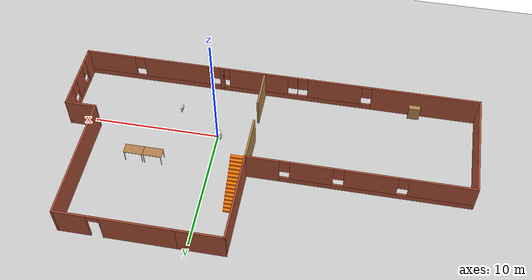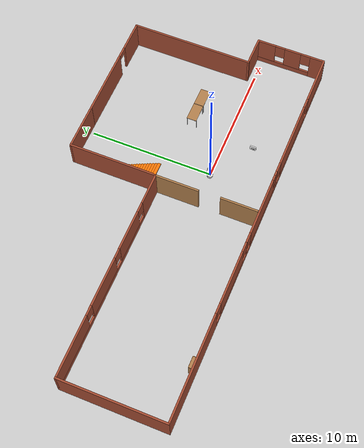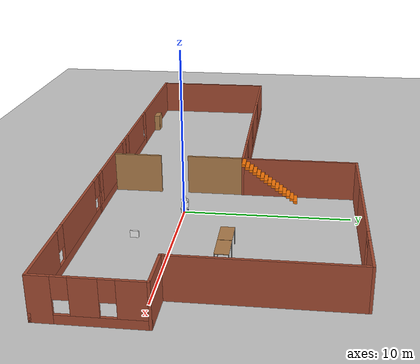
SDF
<sdf version="1.7">
 <world name="default">
  <light name="sun" type="directional">
   <pose>0 0 10 0 -0 0</pose>
   <diffuse>0.8 0.8 0.8 1</diffuse>
   <specular>0.2 0.2 0.2 1</specular>
   <attenuation>
    <range>1000</range>
    <constant>0.9</constant>
    <linear>0.01</linear>
    <quadratic>0.001</quadratic>
   </attenuation>
   <direction>-0.5 0.1 -0.9</direction>
   <spot><inner_angle>0</inner_angle><outer_angle>0</outer_angle><falloff>0</falloff></spot>
  </light>
  <model name="ground_plane">
   <static>1</static>
   <link name="link">
    <collision name="collision">
     <geometry><plane><normal>0 0 1</normal><size>100 100</size></plane></geometry>
     <surface>
      <contact><collide_bitmask>65535</collide_bitmask></contact>
      <friction><ode><mu>100</mu><mu2>50</mu2></ode></friction>
     </surface>
    </collision>
    <visual name="visual">
     <cast_shadows>0</cast_shadows>
     <geometry><plane><normal>0 0 1</normal><size>100 100</size></plane></geometry>
     <material>
      <script><uri>file://media/materials/scripts/gazebo.material</uri><name>Gazebo/Grey</name></script>
     </material>
    </visual>
   </link>
  </model>
  <gravity>0 0 -9.8</gravity>
  <magnetic_field>6e-06 2.3e-05 -4.2e-05</magnetic_field>
  <atmosphere type="adiabatic"/>
  <physics type="ode">
   <max_step_size>0.001</max_step_size>
   <real_time_factor>1</real_time_factor>
   <real_time_update_rate>1000</real_time_update_rate>
  </physics>
  <scene><ambient>0.4 0.4 0.4 1</ambient><background>0.7 0.7 0.7 1</background><shadows>1</shadows></scene>
  <audio><device>default</device></audio>
  <spherical_coordinates>
   <surface_model>EARTH_WGS84</surface_model>
   <latitude_deg>0</latitude_deg>
   <longitude_deg>0</longitude_deg>
   <elevation>0</elevation>
   <heading_deg>0</heading_deg>
  </spherical_coordinates>
  <model name="my_bot">
   <link name="base_link">
    <inertial>
     <pose>-0.066425 -0.011877 0.01512 0 -0 0</pose>
     <mass>2.53078</mass>
     <inertia>
      <ixx>3.92617</ixx>
      <ixy>-0.00703075</ixy>
      <ixz>-0.0105928</ixz>
      <iyy>3.13259</iyy>
      <iyz>-0.0048137</iyz>
      <izz>3.97093</izz>
     </inertia>
    </inertial>
    <collision name="base_link_fixed_joint_lump__charging_dock_collision">
     <pose>0.15 0 -0.03 0 -0 0</pose>
     <geometry>
      <mesh>
       <scale>0.001 0.001 0.001</scale>
       <uri>file:///home/morolinux/Documents/sbem_project_ws/install/robot_sbem/share/robot_sbem/description/meshes/charging_dock.stl</uri>
      </mesh>
     </geometry>
     <surface><friction><ode><mu>0.001</mu><mu2>0.001</mu2></ode></friction></surface>
    </collision>
    <collision name="base_link_fixed_joint_lump__chassis_collision_1">
     <pose>0 -0.04 -0.075 0 -0 0</pose>
     <geometry>
      <mesh>
       <scale>0.001 0.001 0.001</scale>
       <uri>file:///home/morolinux/Documents/sbem_project_ws/install/robot_sbem/share/robot_sbem/description/meshes/cover_frame_1.stl</uri>
      </mesh>
     </geometry>
    </collision>
    <collision name="base_link_fixed_joint_lump__caster_wheel_1_collision_2">
     <pose>0.04 0 -0.03 0 -0 0</pose>
     <geometry><sphere><radius>0.05</radius></sphere></geometry>
     <surface><friction><ode><mu>0.001</mu><mu2>0.001</mu2></ode></friction></surface>
    </collision>
    <collision name="base_link_fixed_joint_lump__caster_wheel_2_collision_3">
     <pose>-0.2 0 -0.03 0 -0 0</pose>
     <geometry><sphere><radius>0.05</radius></sphere></geometry>
     <surface><friction><ode><mu>0.001</mu><mu2>0.001</mu2></ode></friction></surface>
    </collision>
    <collision name="base_link_fixed_joint_lump__central_body_collision_4">
     <pose>-0.08 0 0.405 0 -0 0</pose>
     <geometry><cylinder><length>0.342</length><radius>0.216</radius></cylinder></geometry>
     <surface><friction><ode><mu>0.2</mu><mu2>0.2</mu2></ode></friction></surface>
    </collision>
    <collision name="base_link_fixed_joint_lump__upper_body_collision_5">
     <pose>-0.092447 -0.042954 -0.082 0 -0 0</pose>
     <geometry>
      <mesh>
       <scale>0.001 0.001 0.001</scale>
       <uri>file:///home/morolinux/Documents/sbem_project_ws/install/robot_sbem/share/robot_sbem/description/meshes/upper_body_1.stl</uri>
      </mesh>
     </geometry>
     <surface><friction><ode><mu>0.2</mu><mu2>0.2</mu2></ode></friction></surface>
    </collision>
    <collision name="base_link_fixed_joint_lump__dept_camera_collision_6">
     <pose>0.074599 0.183493 -0.225683 0 -0 0</pose>
     <geometry>
      <mesh>
       <scale>0.001 0.001 0.001</scale>
       <uri>file:///home/morolinux/Documents/sbem_project_ws/install/robot_sbem/share/robot_sbem/description/meshes/dept_camera_1.stl</uri>
      </mesh>
     </geometry>
     <surface><friction><ode><mu>0.2</mu><mu2>0.2</mu2></ode></friction></surface>
    </collision>
    <collision name="base_link_fixed_joint_lump__laser_frame_collision_7">
     <pose>0.07 0 0.2 0 0 -3.14159</pose>
     <geometry><cylinder><length>0.07</length><radius>0.035</radius></cylinder></geometry>
    </collision>
    <collision name="base_link_fixed_joint_lump__internal_body_collision_8">
     <pose>-0.1 -0.04 -0.078 0 -0 0</pose>
     <geometry>
      <mesh>
       <scale>0.001 0.001 0.001</scale>
       <uri>file:///home/morolinux/Documents/sbem_project_ws/install/robot_sbem/share/robot_sbem/description/meshes/base_link.stl</uri>
      </mesh>
     </geometry>
    </collision>
    <visual name="base_link_fixed_joint_lump__charging_dock_visual">
     <pose>0.15 0 -0.03 0 -0 0</pose>
     <geometry>
      <mesh>
       <scale>0.001 0.001 0.001</scale>
       <uri>file:///home/morolinux/Documents/sbem_project_ws/install/robot_sbem/share/robot_sbem/description/meshes/charging_dock.stl</uri>
      </mesh>
     </geometry>
     <material>
      <script><name>Gazebo/White</name><uri>file://media/materials/scripts/gazebo.material</uri></script>
     </material>
    </visual>
    <visual name="base_link_fixed_joint_lump__chassis_visual_1">
     <pose>-0.09 -0.04 -0.075 0 -0 0</pose>
     <geometry>
      <mesh>
       <scale>0.001 0.001 0.001</scale>
       <uri>file:///home/morolinux/Documents/sbem_project_ws/install/robot_sbem/share/robot_sbem/description/meshes/cover_frame_1.stl</uri>
      </mesh>
     </geometry>
     <material>
      <script><name>Gazebo/White</name><uri>file://media/materials/scripts/gazebo.material</uri></script>
     </material>
    </visual>
    <visual name="base_link_fixed_joint_lump__camera_link_visual_2">
     <pose>0.13 0 0.065 0 -0 0</pose>
     <geometry><box><size>0.01 0.03 0.03</size></box></geometry>
     <material>
      <script><name>Gazebo/Red</name><uri>file://media/materials/scripts/gazebo.material</uri></script>
     </material>
    </visual>
    <visual name="base_link_fixed_joint_lump__caster_wheel_1_visual_3">
     <pose>0.04 0 -0.03 0 -0 0</pose>
     <geometry><sphere><radius>0.05</radius></sphere></geometry>
     <material>
      <script><name>Gazebo/White</name><uri>file://media/materials/scripts/gazebo.material</uri></script>
     </material>
    </visual>
    <visual name="base_link_fixed_joint_lump__caster_wheel_2_visual_4">
     <pose>-0.2 0 -0.03 0 -0 0</pose>
     <geometry><sphere><radius>0.05</radius></sphere></geometry>
     <material>
      <script><name>Gazebo/White</name><uri>file://media/materials/scripts/gazebo.material</uri></script>
     </material>
    </visual>
    <visual name="base_link_fixed_joint_lump__central_body_visual_5">
     <pose>-0.08 0 0.405 0 -0 0</pose>
     <geometry><cylinder><length>0.342</length><radius>0.216</radius></cylinder></geometry>
     <material>
      <script><name>Gazebo/White</name><uri>file://media/materials/scripts/gazebo.material</uri></script>
     </material>
    </visual>
    <visual name="base_link_fixed_joint_lump__upper_body_visual_6">
     <pose>-0.092447 -0.042954 -0.082 0 -0 0</pose>
     <geometry>
      <mesh>
       <scale>0.001 0.001 0.001</scale>
       <uri>file:///home/morolinux/Documents/sbem_project_ws/install/robot_sbem/share/robot_sbem/description/meshes/upper_body_1.stl</uri>
      </mesh>
     </geometry>
     <material>
      <script><name>Gazebo/White</name><uri>file://media/materials/scripts/gazebo.material</uri></script>
     </material>
    </visual>
    <visual name="base_link_fixed_joint_lump__dept_camera_visual_7">
     <pose>0.074599 0.183493 -0.225683 0 -0 0</pose>
     <geometry>
      <mesh>
       <scale>0.001 0.001 0.001</scale>
       <uri>file:///home/morolinux/Documents/sbem_project_ws/install/robot_sbem/share/robot_sbem/description/meshes/dept_camera_1.stl</uri>
      </mesh>
     </geometry>
     <material>
      <script><name>Gazebo/White</name><uri>file://media/materials/scripts/gazebo.material</uri></script>
     </material>
    </visual>
    <visual name="base_link_fixed_joint_lump__laser_frame_visual_8">
     <pose>0.07 0 0.2 0 0 -3.14159</pose>
     <geometry><cylinder><length>0.07</length><radius>0.035</radius></cylinder></geometry>
     <material>
      <script><name>Gazebo/Red</name><uri>file://media/materials/scripts/gazebo.material</uri></script>
     </material>
    </visual>
    <visual name="base_link_fixed_joint_lump__internal_body_visual_9">
     <pose>-0.1 -0.04 -0.078 0 -0 0</pose>
     <geometry>
      <mesh>
       <scale>0.001 0.001 0.001</scale>
       <uri>file:///home/morolinux/Documents/sbem_project_ws/install/robot_sbem/share/robot_sbem/description/meshes/base_link.stl</uri>
      </mesh>
     </geometry>
    </visual>
    <sensor name="camera" type="camera">
     <visualize>1</visualize>
     <update_rate>10</update_rate>
     <camera>
      <horizontal_fov>1.089</horizontal_fov>
      <image><format>R8G8B8</format><width>640</width><height>480</height></image>
      <clip><near>0.05</near><far>8</far></clip>
      <distortion>
       <k1>-0.25</k1>
       <k2>0.12</k2>
       <k3>0</k3>
       <p1>-0.00028</p1>
       <p2>-5e-05</p2>
       <center>0.5 0.5</center>
      </distortion>
     </camera>
     <plugin name="camera_controller" filename="libgazebo_ros_camera.so">
      <frame_name>camera_link_optical</frame_name>
     </plugin>
     <pose>0.13 0 0.065 0 -0 0</pose>
    </sensor>
    <self_collide>1</self_collide>
    <sensor name="laser" type="ray">
     <visualize>1</visualize>
     <update_rate>10</update_rate>
     <ray>
      <scan>
       <horizontal>
        <samples>360</samples>
        <min_angle>-3.14</min_angle>
        <max_angle>3.14</max_angle>
        <resolution>1</resolution>
       </horizontal>
       <vertical><samples>1</samples><min_angle>0</min_angle><max_angle>0</max_angle></vertical>
      </scan>
      <range><min>0.1</min><max>12</max></range>
     </ray>
     <plugin name="laser_controller" filename="libgazebo_ros_ray_sensor.so">
      <ros><argument>~/out:=scan</argument></ros>
      <output_type>sensor_msgs/LaserScan</output_type>
      <frame_name>laser_frame</frame_name>
     </plugin>
     <pose>0.07 0 0.2 0 0 -3.14159</pose>
    </sensor>
   </link>
   <joint name="left_wheel_joint" type="revolute">
    <pose relative_to="base_link">-0.075 0.175 0 -1.5708 0 0</pose>
    <parent>base_link</parent>
    <child>left_wheel</child>
    <axis>
     <xyz>0 0 5</xyz>
     <limit><lower>-1e+16</lower><upper>1e+16</upper></limit>
     <dynamics><spring_reference>0</spring_reference><spring_stiffness>0</spring_stiffness></dynamics>
    </axis>
   </joint>
   <link name="left_wheel">
    <pose relative_to="left_wheel_joint">0 0 0 0 -0 0</pose>
    <inertial>
     <mass>1</mass>
     <inertia>
      <ixx>0.00173333</ixx>
      <ixy>0</ixy>
      <ixz>0</ixz>
      <iyy>0.00173333</iyy>
      <iyz>0</iyz>
      <izz>0.0032</izz>
     </inertia>
    </inertial>
    <collision name="left_wheel_collision">
     <geometry><cylinder><length>0.04</length><radius>0.08</radius></cylinder></geometry>
    </collision>
    <visual name="left_wheel_visual">
     <geometry><cylinder><length>0.04</length><radius>0.08</radius></cylinder></geometry>
     <material>
      <script><name>Gazebo/Blue</name><uri>file://media/materials/scripts/gazebo.material</uri></script>
     </material>
    </visual>
   </link>
   <joint name="right_wheel_joint" type="revolute">
    <pose relative_to="base_link">-0.075 -0.175 0 1.5708 -0 0</pose>
    <parent>base_link</parent>
    <child>right_wheel</child>
    <axis>
     <xyz>0 0 -1</xyz>
     <limit><lower>-1e+16</lower><upper>1e+16</upper></limit>
     <dynamics><spring_reference>0</spring_reference><spring_stiffness>0</spring_stiffness></dynamics>
    </axis>
   </joint>
   <link name="right_wheel">
    <pose relative_to="right_wheel_joint">0 0 0 0 -0 0</pose>
    <inertial>
     <mass>1</mass>
     <inertia>
      <ixx>0.00173333</ixx>
      <ixy>0</ixy>
      <ixz>0</ixz>
      <iyy>0.00173333</iyy>
      <iyz>0</iyz>
      <izz>0.0032</izz>
     </inertia>
    </inertial>
    <collision name="right_wheel_collision">
     <geometry><cylinder><length>0.04</length><radius>0.08</radius></cylinder></geometry>
    </collision>
    <visual name="right_wheel_visual">
     <geometry><cylinder><length>0.04</length><radius>0.08</radius></cylinder></geometry>
     <material>
      <script><name>Gazebo/Blue</name><uri>file://media/materials/scripts/gazebo.material</uri></script>
     </material>
    </visual>
   </link>
   <static>0</static>
   <plugin name="diff_drive" filename="libgazebo_ros_diff_drive.so">
    <left_joint>left_wheel_joint</left_joint>
    <right_joint>right_wheel_joint</right_joint>
    <wheel_separation>0.285</wheel_separation>
    <wheel_diameter>0.16</wheel_diameter>
    <max_wheel_torque>200</max_wheel_torque>
    <max_wheel_acceleration>10.0</max_wheel_acceleration>
    <odometry_frame>odom</odometry_frame>
    <robot_base_frame>base_link</robot_base_frame>
    <publish_odom>1</publish_odom>
    <publish_odom_tf>1</publish_odom_tf>
    <publish_wheel_tf>1</publish_wheel_tf>
   </plugin>
   <pose>0.002956 0.026433 0.08 -1e-06 -0 0.001694</pose>
  </model>
  <model name="my_house">
   <pose>-4.05382 2.67066 0 0 -0 0</pose>
   <link name="Stairs_1">
    <visual name="Stairs_1_Visual_0">
     <pose>1.69563 4.02009 0.083333 0 -0 0</pose>
     <geometry><box><size>1 0.233333 0.166667</size></box></geometry>
     <material>
      <script><uri>file://media/materials/scripts/gazebo.material</uri><name>Gazebo/Grey</name></script>
      <ambient>0.996078 0.47451 0.0196078 1</ambient>
     </material>
     <meta><layer>0</layer></meta>
    </visual>
    <collision name="Stairs_1_Collision_0">
     <geometry><box><size>1 0.233333 0.166667</size></box></geometry>
     <pose>1.69563 4.02009 0.083333 0 -0 0</pose>
    </collision>
    <visual name="Stairs_1_Visual_1">
     <pose>1.69563 3.78676 0.25 0 -0 0</pose>
     <geometry><box><size>1 0.233333 0.166667</size></box></geometry>
     <material>
      <script><uri>file://media/materials/scripts/gazebo.material</uri><name>Gazebo/Grey</name></script>
      <ambient>0.996078 0.47451 0.0196078 1</ambient>
     </material>
     <meta><layer>0</layer></meta>
    </visual>
    <collision name="Stairs_1_Collision_1">
     <geometry><box><size>1 0.233333 0.166667</size></box></geometry>
     <pose>1.69563 3.78676 0.25 0 -0 0</pose>
    </collision>
    <visual name="Stairs_1_Visual_2">
     <pose>1.69563 3.55343 0.416667 0 -0 0</pose>
     <geometry><box><size>1 0.233333 0.166667</size></box></geometry>
     <material>
      <script><uri>file://media/materials/scripts/gazebo.material</uri><name>Gazebo/Grey</name></script>
      <ambient>0.996078 0.47451 0.0196078 1</ambient>
     </material>
     <meta><layer>0</layer></meta>
    </visual>
    <collision name="Stairs_1_Collision_2">
     <geometry><box><size>1 0.233333 0.166667</size></box></geometry>
     <pose>1.69563 3.55343 0.416667 0 -0 0</pose>
    </collision>
    <visual name="Stairs_1_Visual_3">
     <pose>1.69563 3.32009 0.583333 0 -0 0</pose>
     <geometry><box><size>1 0.233333 0.166667</size></box></geometry>
     <material>
      <script><uri>file://media/materials/scripts/gazebo.material</uri><name>Gazebo/Grey</name></script>
      <ambient>0.996078 0.47451 0.0196078 1</ambient>
     </material>
     <meta><layer>0</layer></meta>
    </visual>
    <collision name="Stairs_1_Collision_3">
     <geometry><box><size>1 0.233333 0.166667</size></box></geometry>
     <pose>1.69563 3.32009 0.583333 0 -0 0</pose>
    </collision>
    <visual name="Stairs_1_Visual_4">
     <pose>1.69563 3.08676 0.75 0 -0 0</pose>
     <geometry><box><size>1 0.233333 0.166667</size></box></geometry>
     <material>
      <script><uri>file://media/materials/scripts/gazebo.material</uri><name>Gazebo/Grey</name></script>
      <ambient>0.996078 0.47451 0.0196078 1</ambient>
     </material>
     <meta><layer>0</layer></meta>
    </visual>
    <collision name="Stairs_1_Collision_4">
     <geometry><box><size>1 0.233333 0.166667</size></box></geometry>
     <pose>1.69563 3.08676 0.75 0 -0 0</pose>
    </collision>
    <visual name="Stairs_1_Visual_5">
     <pose>1.69563 2.85343 0.916667 0 -0 0</pose>
     <geometry><box><size>1 0.233333 0.166667</size></box></geometry>
     <material>
      <script><uri>file://media/materials/scripts/gazebo.material</uri><name>Gazebo/Grey</name></script>
      <ambient>0.996078 0.47451 0.0196078 1</ambient>
     </material>
     <meta><layer>0</layer></meta>
    </visual>
    <collision name="Stairs_1_Collision_5">
     <geometry><box><size>1 0.233333 0.166667</size></box></geometry>
     <pose>1.69563 2.85343 0.916667 0 -0 0</pose>
    </collision>
    <visual name="Stairs_1_Visual_6">
     <pose>1.69563 2.62009 1.08333 0 -0 0</pose>
     <geometry><box><size>1 0.233333 0.166667</size></box></geometry>
     <material>
      <script><uri>file://media/materials/scripts/gazebo.material</uri><name>Gazebo/Grey</name></script>
      <ambient>0.996078 0.47451 0.0196078 1</ambient>
     </material>
     <meta><layer>0</layer></meta>
    </visual>
    <collision name="Stairs_1_Collision_6">
     <geometry><box><size>1 0.233333 0.166667</size></box></geometry>
     <pose>1.69563 2.62009 1.08333 0 -0 0</pose>
    </collision>
    <visual name="Stairs_1_Visual_7">
     <pose>1.69563 2.38676 1.25 0 -0 0</pose>
     <geometry><box><size>1 0.233333 0.166667</size></box></geometry>
     <material>
      <script><uri>file://media/materials/scripts/gazebo.material</uri><name>Gazebo/Grey</name></script>
      <ambient>0.996078 0.47451 0.0196078 1</ambient>
     </material>
     <meta><layer>0</layer></meta>
    </visual>
    <collision name="Stairs_1_Collision_7">
     <geometry><box><size>1 0.233333 0.166667</size></box></geometry>
     <pose>1.69563 2.38676 1.25 0 -0 0</pose>
    </collision>
    <visual name="Stairs_1_Visual_8">
     <pose>1.69563 2.15343 1.41667 0 -0 0</pose>
     <geometry><box><size>1 0.233333 0.166667</size></box></geometry>
     <material>
      <script><uri>file://media/materials/scripts/gazebo.material</uri><name>Gazebo/Grey</name></script>
      <ambient>0.996078 0.47451 0.0196078 1</ambient>
     </material>
     <meta><layer>0</layer></meta>
    </visual>
    <collision name="Stairs_1_Collision_8">
     <geometry><box><size>1 0.233333 0.166667</size></box></geometry>
     <pose>1.69563 2.15343 1.41667 0 -0 0</pose>
    </collision>
    <visual name="Stairs_1_Visual_9">
     <pose>1.69563 1.92009 1.58333 0 -0 0</pose>
     <geometry><box><size>1 0.233333 0.166667</size></box></geometry>
     <material>
      <script><uri>file://media/materials/scripts/gazebo.material</uri><name>Gazebo/Grey</name></script>
      <ambient>0.996078 0.47451 0.0196078 1</ambient>
     </material>
     <meta><layer>0</layer></meta>
    </visual>
    <collision name="Stairs_1_Collision_9">
     <geometry><box><size>1 0.233333 0.166667</size></box></geometry>
     <pose>1.69563 1.92009 1.58333 0 -0 0</pose>
    </collision>
    <visual name="Stairs_1_Visual_10">
     <pose>1.69563 1.68676 1.75 0 -0 0</pose>
     <geometry><box><size>1 0.233333 0.166667</size></box></geometry>
     <material>
      <script><uri>file://media/materials/scripts/gazebo.material</uri><name>Gazebo/Grey</name></script>
      <ambient>0.996078 0.47451 0.0196078 1</ambient>
     </material>
     <meta><layer>0</layer></meta>
    </visual>
    <collision name="Stairs_1_Collision_10">
     <geometry><box><size>1 0.233333 0.166667</size></box></geometry>
     <pose>1.69563 1.68676 1.75 0 -0 0</pose>
    </collision>
    <visual name="Stairs_1_Visual_11">
     <pose>1.69563 1.45343 1.91667 0 -0 0</pose>
     <geometry><box><size>1 0.233333 0.166667</size></box></geometry>
     <material>
      <script><uri>file://media/materials/scripts/gazebo.material</uri><name>Gazebo/Grey</name></script>
      <ambient>0.996078 0.47451 0.0196078 1</ambient>
     </material>
     <meta><layer>0</layer></meta>
    </visual>
    <collision name="Stairs_1_Collision_11">
     <geometry><box><size>1 0.233333 0.166667</size></box></geometry>
     <pose>1.69563 1.45343 1.91667 0 -0 0</pose>
    </collision>
    <visual name="Stairs_1_Visual_12">
     <pose>1.69563 1.22009 2.08333 0 -0 0</pose>
     <geometry><box><size>1 0.233333 0.166667</size></box></geometry>
     <material>
      <script><uri>file://media/materials/scripts/gazebo.material</uri><name>Gazebo/Grey</name></script>
      <ambient>0.996078 0.47451 0.0196078 1</ambient>
     </material>
     <meta><layer>0</layer></meta>
    </visual>
    <collision name="Stairs_1_Collision_12">
     <geometry><box><size>1 0.233333 0.166667</size></box></geometry>
     <pose>1.69563 1.22009 2.08333 0 -0 0</pose>
    </collision>
    <visual name="Stairs_1_Visual_13">
     <pose>1.69563 0.986759 2.25 0 -0 0</pose>
     <geometry><box><size>1 0.233333 0.166667</size></box></geometry>
     <material>
      <script><uri>file://media/materials/scripts/gazebo.material</uri><name>Gazebo/Grey</name></script>
      <ambient>0.996078 0.47451 0.0196078 1</ambient>
     </material>
     <meta><layer>0</layer></meta>
    </visual>
    <collision name="Stairs_1_Collision_13">
     <geometry><box><size>1 0.233333 0.166667</size></box></geometry>
     <pose>1.69563 0.986759 2.25 0 -0 0</pose>
    </collision>
    <visual name="Stairs_1_Visual_14">
     <pose>1.69563 0.753426 2.41667 0 -0 0</pose>
     <geometry><box><size>1 0.233333 0.166667</size></box></geometry>
     <material>
      <script><uri>file://media/materials/scripts/gazebo.material</uri><name>Gazebo/Grey</name></script>
      <ambient>0.996078 0.47451 0.0196078 1</ambient>
     </material>
     <meta><layer>0</layer></meta>
    </visual>
    <collision name="Stairs_1_Collision_14">
     <geometry><box><size>1 0.233333 0.166667</size></box></geometry>
     <pose>1.69563 0.753426 2.41667 0 -0 0</pose>
    </collision>
   </link>
   <link name="Wall_1">
    <pose>10.275 -7.725 0 0 -0 0</pose>
    <visual name="Wall_1_Visual_0">
     <pose>-5.56024 0 1.25 0 -0 0</pose>
     <geometry><box><size>0.379517 0.15 2.5</size></box></geometry>
     <material>
      <script><uri>file://media/materials/scripts/gazebo.material</uri><name>Gazebo/Bricks</name></script>
      <ambient>1 1 1 1</ambient>
     </material>
     <meta><layer>0</layer></meta>
    </visual>
    <collision name="Wall_1_Collision_0">
     <geometry><box><size>0.379517 0.15 2.5</size></box></geometry>
     <pose>-5.56024 0 1.25 0 -0 0</pose>
    </collision>
    <visual name="Wall_1_Visual_1">
     <pose>0.189759 0 0.25 0 -0 0</pose>
     <geometry><box><size>11.1205 0.15 0.5</size></box></geometry>
     <material>
      <script><uri>file://media/materials/scripts/gazebo.material</uri><name>Gazebo/Bricks</name></script>
      <ambient>1 1 1 1</ambient>
     </material>
     <meta><layer>0</layer></meta>
    </visual>
    <collision name="Wall_1_Collision_1">
     <geometry><box><size>11.1205 0.15 0.5</size></box></geometry>
     <pose>0.189759 0 0.25 0 -0 0</pose>
    </collision>
    <visual name="Wall_1_Visual_2">
     <pose>-1.83102 0 1.5 0 -0 0</pose>
     <geometry><box><size>5.47893 0.15 2</size></box></geometry>
     <material>
      <script><uri>file://media/materials/scripts/gazebo.material</uri><name>Gazebo/Bricks</name></script>
      <ambient>1 1 1 1</ambient>
     </material>
     <meta><layer>0</layer></meta>
    </visual>
    <collision name="Wall_1_Collision_2">
     <geometry><box><size>5.47893 0.15 2</size></box></geometry>
     <pose>-1.83102 0 1.5 0 -0 0</pose>
    </collision>
    <visual name="Wall_1_Visual_3">
     <pose>3.72923 0 1.5 0 -0 0</pose>
     <geometry><box><size>4.04155 0.15 2</size></box></geometry>
     <material>
      <script><uri>file://media/materials/scripts/gazebo.material</uri><name>Gazebo/Bricks</name></script>
      <ambient>1 1 1 1</ambient>
     </material>
     <meta><layer>0</layer></meta>
    </visual>
    <collision name="Wall_1_Collision_3">
     <geometry><box><size>4.04155 0.15 2</size></box></geometry>
     <pose>3.72923 0 1.5 0 -0 0</pose>
    </collision>
    <visual name="Wall_1_Visual_4">
     <pose>-4.97048 0 1.9 0 -0 0</pose>
     <geometry><box><size>0.8 0.15 1.2</size></box></geometry>
     <material>
      <script><uri>file://media/materials/scripts/gazebo.material</uri><name>Gazebo/Bricks</name></script>
      <ambient>1 1 1 1</ambient>
     </material>
     <meta><layer>0</layer></meta>
    </visual>
    <collision name="Wall_1_Collision_4">
     <geometry><box><size>0.8 0.15 1.2</size></box></geometry>
     <pose>-4.97048 0 1.9 0 -0 0</pose>
    </collision>
    <visual name="Wall_1_Visual_5">
     <pose>1.30845 0 1.9 0 -0 0</pose>
     <geometry><box><size>0.8 0.15 1.2</size></box></geometry>
     <material>
      <script><uri>file://media/materials/scripts/gazebo.material</uri><name>Gazebo/Bricks</name></script>
      <ambient>1 1 1 1</ambient>
     </material>
     <meta><layer>0</layer></meta>
    </visual>
    <collision name="Wall_1_Collision_5">
     <geometry><box><size>0.8 0.15 1.2</size></box></geometry>
     <pose>1.30845 0 1.9 0 -0 0</pose>
    </collision>
   </link>
   <link name="Wall_10">
    <pose>-5.675 -7.725 0 0 -0 0</pose>
    <visual name="Wall_10_Visual_0">
     <pose>-6.08547 0 1.25 0 -0 0</pose>
     <geometry><box><size>8.52906 0.15 2.5</size></box></geometry>
     <material>
      <script><uri>file://media/materials/scripts/gazebo.material</uri><name>Gazebo/Bricks</name></script>
      <ambient>1 1 1 1</ambient>
     </material>
     <meta><layer>0</layer></meta>
    </visual>
    <collision name="Wall_10_Collision_0">
     <geometry><box><size>8.52906 0.15 2.5</size></box></geometry>
     <pose>-6.08547 0 1.25 0 -0 0</pose>
    </collision>
    <visual name="Wall_10_Visual_1">
     <pose>4.26453 0 0.25 0 -0 0</pose>
     <geometry><box><size>12.1709 0.15 0.5</size></box></geometry>
     <material>
      <script><uri>file://media/materials/scripts/gazebo.material</uri><name>Gazebo/Bricks</name></script>
      <ambient>1 1 1 1</ambient>
     </material>
     <meta><layer>0</layer></meta>
    </visual>
    <collision name="Wall_10_Collision_1">
     <geometry><box><size>12.1709 0.15 0.5</size></box></geometry>
     <pose>4.26453 0 0.25 0 -0 0</pose>
    </collision>
    <visual name="Wall_10_Visual_2">
     <pose>1.15885 0 1.5 0 -0 0</pose>
     <geometry><box><size>4.35957 0.15 2</size></box></geometry>
     <material>
      <script><uri>file://media/materials/scripts/gazebo.material</uri><name>Gazebo/Bricks</name></script>
      <ambient>1 1 1 1</ambient>
     </material>
     <meta><layer>0</layer></meta>
    </visual>
    <collision name="Wall_10_Collision_2">
     <geometry><box><size>4.35957 0.15 2</size></box></geometry>
     <pose>1.15885 0 1.5 0 -0 0</pose>
    </collision>
    <visual name="Wall_10_Visual_3">
     <pose>4.14965 0 1.5 0 -0 0</pose>
     <geometry><box><size>0.022033 0.15 2</size></box></geometry>
     <material>
      <script><uri>file://media/materials/scripts/gazebo.material</uri><name>Gazebo/Bricks</name></script>
      <ambient>1 1 1 1</ambient>
     </material>
     <meta><layer>0</layer></meta>
    </visual>
    <collision name="Wall_10_Collision_3">
     <geometry><box><size>0.022033 0.15 2</size></box></geometry>
     <pose>4.14965 0 1.5 0 -0 0</pose>
    </collision>
    <visual name="Wall_10_Visual_4">
     <pose>7.35907 0 1.5 0 -0 0</pose>
     <geometry><box><size>4.79682 0.15 2</size></box></geometry>
     <material>
      <script><uri>file://media/materials/scripts/gazebo.material</uri><name>Gazebo/Bricks</name></script>
      <ambient>1 1 1 1</ambient>
     </material>
     <meta><layer>0</layer></meta>
    </visual>
    <collision name="Wall_10_Collision_4">
     <geometry><box><size>4.79682 0.15 2</size></box></geometry>
     <pose>7.35907 0 1.5 0 -0 0</pose>
    </collision>
    <visual name="Wall_10_Visual_5">
     <pose>7.35907 0 1.5 0 -0 0</pose>
     <geometry><box><size>4.79682 0.15 2</size></box></geometry>
     <material>
      <script><uri>file://media/materials/scripts/gazebo.material</uri><name>Gazebo/Bricks</name></script>
      <ambient>1 1 1 1</ambient>
     </material>
     <meta><layer>0</layer></meta>
    </visual>
    <collision name="Wall_10_Collision_5">
     <geometry><box><size>4.79682 0.15 2</size></box></geometry>
     <pose>7.35907 0 1.5 0 -0 0</pose>
    </collision>
    <visual name="Wall_10_Visual_6">
     <pose>-1.42094 0 1.9 0 -0 0</pose>
     <geometry><box><size>0.8 0.15 1.2</size></box></geometry>
     <material>
      <script><uri>file://media/materials/scripts/gazebo.material</uri><name>Gazebo/Bricks</name></script>
      <ambient>1 1 1 1</ambient>
     </material>
     <meta><layer>0</layer></meta>
    </visual>
    <collision name="Wall_10_Collision_6">
     <geometry><box><size>0.8 0.15 1.2</size></box></geometry>
     <pose>-1.42094 0 1.9 0 -0 0</pose>
    </collision>
    <visual name="Wall_10_Visual_7">
     <pose>3.73863 0 1.9 0 -0 0</pose>
     <geometry><box><size>0.8 0.15 1.2</size></box></geometry>
     <material>
      <script><uri>file://media/materials/scripts/gazebo.material</uri><name>Gazebo/Bricks</name></script>
      <ambient>1 1 1 1</ambient>
     </material>
     <meta><layer>0</layer></meta>
    </visual>
    <collision name="Wall_10_Collision_7">
     <geometry><box><size>0.8 0.15 1.2</size></box></geometry>
     <pose>3.73863 0 1.9 0 -0 0</pose>
    </collision>
    <visual name="Wall_10_Visual_8">
     <pose>4.56066 0 1.9 0 -0 0</pose>
     <geometry><box><size>0.8 0.15 1.2</size></box></geometry>
     <material>
      <script><uri>file://media/materials/scripts/gazebo.material</uri><name>Gazebo/Bricks</name></script>
      <ambient>1 1 1 1</ambient>
     </material>
     <meta><layer>0</layer></meta>
    </visual>
    <collision name="Wall_10_Collision_8">
     <geometry><box><size>0.8 0.15 1.2</size></box></geometry>
     <pose>4.56066 0 1.9 0 -0 0</pose>
    </collision>
    <visual name="Wall_10_Visual_9">
     <pose>10.0537 0 1.9 0 -0 0</pose>
     <geometry><box><size>0.592516 0.15 1.2</size></box></geometry>
     <material>
      <script><uri>file://media/materials/scripts/gazebo.material</uri><name>Gazebo/Bricks</name></script>
      <ambient>1 1 1 1</ambient>
     </material>
     <meta><layer>0</layer></meta>
    </visual>
    <collision name="Wall_10_Collision_9">
     <geometry><box><size>0.592516 0.15 1.2</size></box></geometry>
     <pose>10.0537 0 1.9 0 -0 0</pose>
    </collision>
    <visual name="Wall_10_Visual_10">
     <pose>10.0537 0 1.9 0 -0 0</pose>
     <geometry><box><size>0.592516 0.15 1.2</size></box></geometry>
     <material>
      <script><uri>file://media/materials/scripts/gazebo.material</uri><name>Gazebo/Bricks</name></script>
      <ambient>1 1 1 1</ambient>
     </material>
     <meta><layer>0</layer></meta>
    </visual>
    <collision name="Wall_10_Collision_10">
     <geometry><box><size>0.592516 0.15 1.2</size></box></geometry>
     <pose>10.0537 0 1.9 0 -0 0</pose>
    </collision>
   </link>
   <link name="Wall_2">
    <pose>15.95 -4.925 0 0 -0 1.5708</pose>
    <visual name="Wall_2_Visual_0">
     <pose>-2.27165 0 1.25 0 -0 0</pose>
     <geometry><box><size>1.2067 0.15 2.5</size></box></geometry>
     <material>
      <script><uri>file://media/materials/scripts/gazebo.material</uri><name>Gazebo/Bricks</name></script>
      <ambient>1 1 1 1</ambient>
     </material>
     <meta><layer>0</layer></meta>
    </visual>
    <collision name="Wall_2_Collision_0">
     <geometry><box><size>1.2067 0.15 2.5</size></box></geometry>
     <pose>-2.27165 0 1.25 0 -0 0</pose>
    </collision>
    <visual name="Wall_2_Visual_1">
     <pose>0.603351 0 0.25 0 -0 0</pose>
     <geometry><box><size>4.5433 0.15 0.5</size></box></geometry>
     <material>
      <script><uri>file://media/materials/scripts/gazebo.material</uri><name>Gazebo/Bricks</name></script>
      <ambient>1 1 1 1</ambient>
     </material>
     <meta><layer>0</layer></meta>
    </visual>
    <collision name="Wall_2_Collision_1">
     <geometry><box><size>4.5433 0.15 0.5</size></box></geometry>
     <pose>0.603351 0 0.25 0 -0 0</pose>
    </collision>
    <visual name="Wall_2_Visual_2">
     <pose>-0.182345 0 1.5 0 -0 0</pose>
     <geometry><box><size>1.37191 0.15 2</size></box></geometry>
     <material>
      <script><uri>file://media/materials/scripts/gazebo.material</uri><name>Gazebo/Bricks</name></script>
      <ambient>1 1 1 1</ambient>
     </material>
     <meta><layer>0</layer></meta>
    </visual>
    <collision name="Wall_2_Collision_2">
     <geometry><box><size>1.37191 0.15 2</size></box></geometry>
     <pose>-0.182345 0 1.5 0 -0 0</pose>
    </collision>
    <visual name="Wall_2_Visual_3">
     <pose>2.0893 0 1.5 0 -0 0</pose>
     <geometry><box><size>1.57139 0.15 2</size></box></geometry>
     <material>
      <script><uri>file://media/materials/scripts/gazebo.material</uri><name>Gazebo/Bricks</name></script>
      <ambient>1 1 1 1</ambient>
     </material>
     <meta><layer>0</layer></meta>
    </visual>
    <collision name="Wall_2_Collision_3">
     <geometry><box><size>1.57139 0.15 2</size></box></geometry>
     <pose>2.0893 0 1.5 0 -0 0</pose>
    </collision>
    <visual name="Wall_2_Visual_4">
     <pose>-1.2683 0 1.9 0 -0 0</pose>
     <geometry><box><size>0.8 0.15 1.2</size></box></geometry>
     <material>
      <script><uri>file://media/materials/scripts/gazebo.material</uri><name>Gazebo/Bricks</name></script>
      <ambient>1 1 1 1</ambient>
     </material>
     <meta><layer>0</layer></meta>
    </visual>
    <collision name="Wall_2_Collision_4">
     <geometry><box><size>0.8 0.15 1.2</size></box></geometry>
     <pose>-1.2683 0 1.9 0 -0 0</pose>
    </collision>
    <visual name="Wall_2_Visual_5">
     <pose>0.903608 0 1.9 0 -0 0</pose>
     <geometry><box><size>0.8 0.15 1.2</size></box></geometry>
     <material>
      <script><uri>file://media/materials/scripts/gazebo.material</uri><name>Gazebo/Bricks</name></script>
      <ambient>1 1 1 1</ambient>
     </material>
     <meta><layer>0</layer></meta>
    </visual>
    <collision name="Wall_2_Collision_5">
     <geometry><box><size>0.8 0.15 1.2</size></box></geometry>
     <pose>0.903608 0 1.9 0 -0 0</pose>
    </collision>
   </link>
   <link name="Wall_3">
    <collision name="Wall_3_Collision">
     <geometry><box><size>2.5 0.15 2.5</size></box></geometry>
     <pose>0 0 1.25 0 -0 0</pose>
    </collision>
    <visual name="Wall_3_Visual">
     <pose>0 0 1.25 0 -0 0</pose>
     <geometry><box><size>2.5 0.15 2.5</size></box></geometry>
     <material>
      <script><uri>file://media/materials/scripts/gazebo.material</uri><name>Gazebo/Bricks</name></script>
      <ambient>1 1 1 1</ambient>
     </material>
     <meta><layer>0</layer></meta>
    </visual>
    <pose>14.775 -2.125 0 0 -0 3.14159</pose>
   </link>
   <link name="Wall_4">
    <collision name="Wall_4_Collision">
     <geometry><box><size>10 0.15 2.5</size></box></geometry>
     <pose>0 0 1.25 0 -0 0</pose>
    </collision>
    <visual name="Wall_4_Visual">
     <pose>0 0 1.25 0 -0 0</pose>
     <geometry><box><size>10 0.15 2.5</size></box></geometry>
     <material>
      <script><uri>file://media/materials/scripts/gazebo.material</uri><name>Gazebo/Bricks</name></script>
      <ambient>1 1 1 1</ambient>
     </material>
     <meta><layer>0</layer></meta>
    </visual>
    <pose>13.6 2.8 0 0 -0 1.5708</pose>
   </link>
   <link name="Wall_5">
    <pose>9.175 7.725 0 0 -0 3.14159</pose>
    <visual name="Wall_5_Visual_0">
     <pose>-3.21556 0 1.25 0 -0 0</pose>
     <geometry><box><size>2.56888 0.15 2.5</size></box></geometry>
     <material>
      <script><uri>file://media/materials/scripts/gazebo.material</uri><name>Gazebo/Bricks</name></script>
      <ambient>1 1 1 1</ambient>
     </material>
     <meta><layer>0</layer></meta>
    </visual>
    <collision name="Wall_5_Collision_0">
     <geometry><box><size>2.56888 0.15 2.5</size></box></geometry>
     <pose>-3.21556 0 1.25 0 -0 0</pose>
    </collision>
    <visual name="Wall_5_Visual_1">
     <pose>1.73444 0 1.25 0 -0 0</pose>
     <geometry><box><size>5.53112 0.15 2.5</size></box></geometry>
     <material>
      <script><uri>file://media/materials/scripts/gazebo.material</uri><name>Gazebo/Bricks</name></script>
      <ambient>1 1 1 1</ambient>
     </material>
     <meta><layer>0</layer></meta>
    </visual>
    <collision name="Wall_5_Collision_1">
     <geometry><box><size>5.53112 0.15 2.5</size></box></geometry>
     <pose>1.73444 0 1.25 0 -0 0</pose>
    </collision>
    <visual name="Wall_5_Visual_2">
     <pose>-1.48112 0 2.25 0 -0 0</pose>
     <geometry><box><size>0.9 0.15 0.5</size></box></geometry>
     <material>
      <script><uri>file://media/materials/scripts/gazebo.material</uri><name>Gazebo/Bricks</name></script>
      <ambient>1 1 1 1</ambient>
     </material>
     <meta><layer>0</layer></meta>
    </visual>
    <collision name="Wall_5_Collision_2">
     <geometry><box><size>0.9 0.15 0.5</size></box></geometry>
     <pose>-1.48112 0 2.25 0 -0 0</pose>
    </collision>
   </link>
   <link name="Wall_6">
    <collision name="Wall_6_Collision">
     <geometry><box><size>3.75 0.15 2.5</size></box></geometry>
     <pose>0 0 1.25 0 -0 0</pose>
    </collision>
    <visual name="Wall_6_Visual">
     <pose>0 0 1.25 0 -0 0</pose>
     <geometry><box><size>3.75 0.15 2.5</size></box></geometry>
     <material>
      <script><uri>file://media/materials/scripts/gazebo.material</uri><name>Gazebo/Bricks</name></script>
      <ambient>1 1 1 1</ambient>
     </material>
     <meta><layer>0</layer></meta>
    </visual>
    <pose>2.95 7.725 0 0 -0 3.14159</pose>
   </link>
   <link name="Wall_7">
    <collision name="Wall_7_Collision">
     <geometry><box><size>7.25 0.15 2.5</size></box></geometry>
     <pose>0 0 1.25 0 -0 0</pose>
    </collision>
    <visual name="Wall_7_Visual">
     <pose>0 0 1.25 0 -0 0</pose>
     <geometry><box><size>7.25 0.15 2.5</size></box></geometry>
     <material>
      <script><uri>file://media/materials/scripts/gazebo.material</uri><name>Gazebo/Bricks</name></script>
      <ambient>1 1 1 1</ambient>
     </material>
     <meta><layer>0</layer></meta>
    </visual>
    <pose>1.15 4.175 0 0 -0 -1.5708</pose>
   </link>
   <link name="Wall_8">
    <pose>-7.4 0.625 0 0 -0 3.14159</pose>
    <visual name="Wall_8_Visual_0">
     <pose>-7.29872 0 1.25 0 -0 0</pose>
     <geometry><box><size>2.65255 0.15 2.5</size></box></geometry>
     <material>
      <script><uri>file://media/materials/scripts/gazebo.material</uri><name>Gazebo/Bricks</name></script>
      <ambient>1 1 1 1</ambient>
     </material>
     <meta><layer>0</layer></meta>
    </visual>
    <collision name="Wall_8_Collision_0">
     <geometry><box><size>2.65255 0.15 2.5</size></box></geometry>
     <pose>-7.29872 0 1.25 0 -0 0</pose>
    </collision>
    <visual name="Wall_8_Visual_1">
     <pose>1.32628 0 0.25 0 -0 0</pose>
     <geometry><box><size>14.5974 0.15 0.5</size></box></geometry>
     <material>
      <script><uri>file://media/materials/scripts/gazebo.material</uri><name>Gazebo/Bricks</name></script>
      <ambient>1 1 1 1</ambient>
     </material>
     <meta><layer>0</layer></meta>
    </visual>
    <collision name="Wall_8_Collision_1">
     <geometry><box><size>14.5974 0.15 0.5</size></box></geometry>
     <pose>1.32628 0 0.25 0 -0 0</pose>
    </collision>
    <visual name="Wall_8_Visual_2">
     <pose>-3.5382 0 1.5 0 -0 0</pose>
     <geometry><box><size>3.2685 0.15 2</size></box></geometry>
     <material>
      <script><uri>file://media/materials/scripts/gazebo.material</uri><name>Gazebo/Bricks</name></script>
      <ambient>1 1 1 1</ambient>
     </material>
     <meta><layer>0</layer></meta>
    </visual>
    <collision name="Wall_8_Collision_2">
     <geometry><box><size>3.2685 0.15 2</size></box></geometry>
     <pose>-3.5382 0 1.5 0 -0 0</pose>
    </collision>
    <visual name="Wall_8_Visual_3">
     <pose>0.88209 0 1.5 0 -0 0</pose>
     <geometry><box><size>3.97208 0.15 2</size></box></geometry>
     <material>
      <script><uri>file://media/materials/scripts/gazebo.material</uri><name>Gazebo/Bricks</name></script>
      <ambient>1 1 1 1</ambient>
     </material>
     <meta><layer>0</layer></meta>
    </visual>
    <collision name="Wall_8_Collision_3">
     <geometry><box><size>3.97208 0.15 2</size></box></geometry>
     <pose>0.88209 0 1.5 0 -0 0</pose>
    </collision>
    <visual name="Wall_8_Visual_4">
     <pose>6.14656 0 1.5 0 -0 0</pose>
     <geometry><box><size>4.95687 0.15 2</size></box></geometry>
     <material>
      <script><uri>file://media/materials/scripts/gazebo.material</uri><name>Gazebo/Bricks</name></script>
      <ambient>1 1 1 1</ambient>
     </material>
     <meta><layer>0</layer></meta>
    </visual>
    <collision name="Wall_8_Collision_4">
     <geometry><box><size>4.95687 0.15 2</size></box></geometry>
     <pose>6.14656 0 1.5 0 -0 0</pose>
    </collision>
    <visual name="Wall_8_Visual_5">
     <pose>-5.57245 0 1.9 0 -0 0</pose>
     <geometry><box><size>0.8 0.15 1.2</size></box></geometry>
     <material>
      <script><uri>file://media/materials/scripts/gazebo.material</uri><name>Gazebo/Bricks</name></script>
      <ambient>1 1 1 1</ambient>
     </material>
     <meta><layer>0</layer></meta>
    </visual>
    <collision name="Wall_8_Collision_5">
     <geometry><box><size>0.8 0.15 1.2</size></box></geometry>
     <pose>-5.57245 0 1.9 0 -0 0</pose>
    </collision>
    <visual name="Wall_8_Visual_6">
     <pose>-1.50395 0 1.9 0 -0 0</pose>
     <geometry><box><size>0.8 0.15 1.2</size></box></geometry>
     <material>
      <script><uri>file://media/materials/scripts/gazebo.material</uri><name>Gazebo/Bricks</name></script>
      <ambient>1 1 1 1</ambient>
     </material>
     <meta><layer>0</layer></meta>
    </visual>
    <collision name="Wall_8_Collision_6">
     <geometry><box><size>0.8 0.15 1.2</size></box></geometry>
     <pose>-1.50395 0 1.9 0 -0 0</pose>
    </collision>
    <visual name="Wall_8_Visual_7">
     <pose>3.26813 0 1.9 0 -0 0</pose>
     <geometry><box><size>0.8 0.15 1.2</size></box></geometry>
     <material>
      <script><uri>file://media/materials/scripts/gazebo.material</uri><name>Gazebo/Bricks</name></script>
      <ambient>1 1 1 1</ambient>
     </material>
     <meta><layer>0</layer></meta>
    </visual>
    <collision name="Wall_8_Collision_7">
     <geometry><box><size>0.8 0.15 1.2</size></box></geometry>
     <pose>3.26813 0 1.9 0 -0 0</pose>
    </collision>
   </link>
   <link name="Wall_9">
    <collision name="Wall_9_Collision">
     <geometry><box><size>8.5 0.15 2.5</size></box></geometry>
     <pose>0 0 1.25 0 -0 0</pose>
    </collision>
    <visual name="Wall_9_Visual">
     <pose>0 0 1.25 0 -0 0</pose>
     <geometry><box><size>8.5 0.15 2.5</size></box></geometry>
     <material>
      <script><uri>file://media/materials/scripts/gazebo.material</uri><name>Gazebo/Bricks</name></script>
      <ambient>1 1 1 1</ambient>
     </material>
     <meta><layer>0</layer></meta>
    </visual>
    <pose>-15.95 -3.55 0 0 -0 -1.5708</pose>
   </link>
   <static>1</static>
  </model>
  <model name="table">
   <static>1</static>
   <link name="link">
    <collision name="surface">
     <pose>0 0 1 0 -0 0</pose>
     <geometry><box><size>1.5 0.8 0.03</size></box></geometry>
     <surface><friction><ode><mu>0.6</mu><mu2>0.6</mu2></ode></friction></surface>
    </collision>
    <visual name="visual1">
     <pose>0 0 1 0 -0 0</pose>
     <geometry><box><size>1.5 0.8 0.03</size></box></geometry>
     <material>
      <script><uri>file://media/materials/scripts/gazebo.material</uri><name>Gazebo/Wood</name></script>
     </material>
    </visual>
    <collision name="front_left_leg">
     <pose>0.68 0.38 0.5 0 -0 0</pose>
     <geometry><cylinder><radius>0.02</radius><length>1</length></cylinder></geometry>
    </collision>
    <visual name="front_left_leg">
     <pose>0.68 0.38 0.5 0 -0 0</pose>
     <geometry><cylinder><radius>0.02</radius><length>1</length></cylinder></geometry>
     <material>
      <script><uri>file://media/materials/scripts/gazebo.material</uri><name>Gazebo/Grey</name></script>
     </material>
    </visual>
    <collision name="front_right_leg">
     <pose>0.68 -0.38 0.5 0 -0 0</pose>
     <geometry><cylinder><radius>0.02</radius><length>1</length></cylinder></geometry>
    </collision>
    <visual name="front_right_leg">
     <pose>0.68 -0.38 0.5 0 -0 0</pose>
     <geometry><cylinder><radius>0.02</radius><length>1</length></cylinder></geometry>
     <material>
      <script><uri>file://media/materials/scripts/gazebo.material</uri><name>Gazebo/Grey</name></script>
     </material>
    </visual>
    <collision name="back_right_leg">
     <pose>-0.68 -0.38 0.5 0 -0 0</pose>
     <geometry><cylinder><radius>0.02</radius><length>1</length></cylinder></geometry>
    </collision>
    <visual name="back_right_leg">
     <pose>-0.68 -0.38 0.5 0 -0 0</pose>
     <geometry><cylinder><radius>0.02</radius><length>1</length></cylinder></geometry>
     <material>
      <script><uri>file://media/materials/scripts/gazebo.material</uri><name>Gazebo/Grey</name></script>
     </material>
    </visual>
    <collision name="back_left_leg">
     <pose>-0.68 0.38 0.5 0 -0 0</pose>
     <geometry><cylinder><radius>0.02</radius><length>1</length></cylinder></geometry>
    </collision>
    <visual name="back_left_leg">
     <pose>-0.68 0.38 0.5 0 -0 0</pose>
     <geometry><cylinder><radius>0.02</radius><length>1</length></cylinder></geometry>
     <material>
      <script><uri>file://media/materials/scripts/gazebo.material</uri><name>Gazebo/Grey</name></script>
     </material>
    </visual>
   </link>
   <pose>5.88826 3.06652 0 0 -0 0</pose>
  </model>
  <model name="table_0">
   <static>1</static>
   <link name="link">
    <collision name="surface">
     <pose>0 0 1 0 -0 0</pose>
     <geometry><box><size>1.5 0.8 0.03</size></box></geometry>
     <surface><friction><ode><mu>0.6</mu><mu2>0.6</mu2></ode></friction></surface>
    </collision>
    <visual name="visual1">
     <pose>0 0 1 0 -0 0</pose>
     <geometry><box><size>1.5 0.8 0.03</size></box></geometry>
     <material>
      <script><uri>file://media/materials/scripts/gazebo.material</uri><name>Gazebo/Wood</name></script>
     </material>
    </visual>
    <collision name="front_left_leg">
     <pose>0.68 0.38 0.5 0 -0 0</pose>
     <geometry><cylinder><radius>0.02</radius><length>1</length></cylinder></geometry>
    </collision>
    <visual name="front_left_leg">
     <pose>0.68 0.38 0.5 0 -0 0</pose>
     <geometry><cylinder><radius>0.02</radius><length>1</length></cylinder></geometry>
     <material>
      <script><uri>file://media/materials/scripts/gazebo.material</uri><name>Gazebo/Grey</name></script>
     </material>
    </visual>
    <collision name="front_right_leg">
     <pose>0.68 -0.38 0.5 0 -0 0</pose>
     <geometry><cylinder><radius>0.02</radius><length>1</length></cylinder></geometry>
    </collision>
    <visual name="front_right_leg">
     <pose>0.68 -0.38 0.5 0 -0 0</pose>
     <geometry><cylinder><radius>0.02</radius><length>1</length></cylinder></geometry>
     <material>
      <script><uri>file://media/materials/scripts/gazebo.material</uri><name>Gazebo/Grey</name></script>
     </material>
    </visual>
    <collision name="back_right_leg">
     <pose>-0.68 -0.38 0.5 0 -0 0</pose>
     <geometry><cylinder><radius>0.02</radius><length>1</length></cylinder></geometry>
    </collision>
    <visual name="back_right_leg">
     <pose>-0.68 -0.38 0.5 0 -0 0</pose>
     <geometry><cylinder><radius>0.02</radius><length>1</length></cylinder></geometry>
     <material>
      <script><uri>file://media/materials/scripts/gazebo.material</uri><name>Gazebo/Grey</name></script>
     </material>
    </visual>
    <collision name="back_left_leg">
     <pose>-0.68 0.38 0.5 0 -0 0</pose>
     <geometry><cylinder><radius>0.02</radius><length>1</length></cylinder></geometry>
    </collision>
    <visual name="back_left_leg">
     <pose>-0.68 0.38 0.5 0 -0 0</pose>
     <geometry><cylinder><radius>0.02</radius><length>1</length></cylinder></geometry>
     <material>
      <script><uri>file://media/materials/scripts/gazebo.material</uri><name>Gazebo/Grey</name></script>
     </material>
    </visual>
   </link>
   <pose>4.36423 3.06974 0 0 -0 0</pose>
  </model>
  <model name="bookshelf">
   <static>1</static>
   <link name="link">
    <inertial><mass>1</mass></inertial>
    <collision name="back">
     <pose>0 0.005 0.6 0 -0 0</pose>
     <geometry><box><size>0.9 0.01 1.2</size></box></geometry>
    </collision>
    <visual name="visual1">
     <pose>0 0.005 0.6 0 -0 0</pose>
     <geometry><box><size>0.9 0.01 1.2</size></box></geometry>
     <material>
      <script><uri>file://media/materials/scripts/gazebo.material</uri><name>Gazebo/Wood</name></script>
     </material>
    </visual>
    <collision name="left_side">
     <pose>0.45 -0.195 0.6 0 -0 0</pose>
     <geometry><box><size>0.02 0.4 1.2</size></box></geometry>
    </collision>
    <visual name="visual2">
     <pose>0.45 -0.195 0.6 0 -0 0</pose>
     <geometry><box><size>0.02 0.4 1.2</size></box></geometry>
     <material>
      <script><uri>file://media/materials/scripts/gazebo.material</uri><name>Gazebo/Wood</name></script>
     </material>
    </visual>
    <collision name="right_side">
     <pose>-0.45 -0.195 0.6 0 -0 0</pose>
     <geometry><box><size>0.02 0.4 1.2</size></box></geometry>
    </collision>
    <visual name="visual3">
     <pose>-0.45 -0.195 0.6 0 -0 0</pose>
     <geometry><box><size>0.02 0.4 1.2</size></box></geometry>
     <material>
      <script><uri>file://media/materials/scripts/gazebo.material</uri><name>Gazebo/Wood</name></script>
     </material>
    </visual>
    <collision name="bottom">
     <pose>0 -0.195 0.03 0 -0 0</pose>
     <geometry><box><size>0.88 0.4 0.06</size></box></geometry>
    </collision>
    <visual name="visual4">
     <pose>0 -0.195 0.03 0 -0 0</pose>
     <geometry><box><size>0.88 0.4 0.06</size></box></geometry>
     <material>
      <script><uri>file://media/materials/scripts/gazebo.material</uri><name>Gazebo/Wood</name></script>
     </material>
    </visual>
    <collision name="top">
     <pose>0 -0.195 1.19 0 -0 0</pose>
     <geometry><box><size>0.88 0.4 0.02</size></box></geometry>
    </collision>
    <visual name="visual5">
     <pose>0 -0.195 1.19 0 -0 0</pose>
     <geometry><box><size>0.88 0.4 0.02</size></box></geometry>
     <material>
      <script><uri>file://media/materials/scripts/gazebo.material</uri><name>Gazebo/Wood</name></script>
     </material>
    </visual>
    <collision name="low_shelf">
     <pose>0 -0.195 0.43 0 -0 0</pose>
     <geometry><box><size>0.88 0.4 0.02</size></box></geometry>
    </collision>
    <visual name="visual6">
     <pose>0 -0.195 0.43 0 -0 0</pose>
     <geometry><box><size>0.88 0.4 0.02</size></box></geometry>
     <material>
      <script><uri>file://media/materials/scripts/gazebo.material</uri><name>Gazebo/Wood</name></script>
     </material>
    </visual>
    <collision name="high_shelf">
     <pose>0 -0.195 0.8 0 -0 0</pose>
     <geometry><box><size>0.88 0.4 0.02</size></box></geometry>
    </collision>
    <visual name="visual7">
     <pose>0 -0.195 0.8 0 -0 0</pose>
     <geometry><box><size>0.88 0.4 0.02</size></box></geometry>
     <material>
      <script><uri>file://media/materials/scripts/gazebo.material</uri><name>Gazebo/Wood</name></script>
     </material>
    </visual>
   </link>
   <pose>-15.0828 -4.575 0 0 -0 0</pose>
  </model>
  <model name="my_house_v2">
   <pose>-1.50259 -0.83507 0 0 -0 0</pose>
   <link name="Wall_5">
    <collision name="Wall_5_Collision">
     <geometry><box><size>3 0.15 2.5</size></box></geometry>
     <pose>0 0 1.25 0 -0 0</pose>
    </collision>
    <visual name="Wall_5_Visual">
     <pose>0 0 1.25 0 -0 0</pose>
     <geometry><box><size>3 0.15 2.5</size></box></geometry>
     <material>
      <script><uri>file://media/materials/scripts/gazebo.material</uri><name>Gazebo/Wood</name></script>
      <ambient>1 1 1 1</ambient>
     </material>
     <meta><layer>0</layer></meta>
    </visual>
    <pose>-1.36641 -2.608 0 0 -0 -1.5708</pose>
   </link>
   <link name="Wall_7">
    <collision name="Wall_7_Collision">
     <geometry><box><size>3.5 0.15 2.5</size></box></geometry>
     <pose>0 0 1.25 0 -0 0</pose>
    </collision>
    <visual name="Wall_7_Visual">
     <pose>0 0 1.25 0 -0 0</pose>
     <geometry><box><size>3.5 0.15 2.5</size></box></geometry>
     <material>
      <script><uri>file://media/materials/scripts/gazebo.material</uri><name>Gazebo/Wood</name></script>
      <ambient>1 1 1 1</ambient>
     </material>
     <meta><layer>0</layer></meta>
    </visual>
    <pose>-1.42759 2.358 0 0 -0 1.5708</pose>
   </link>
   <static>1</static>
  </model>
  <model name="MiniMockCharger">
   <allow_auto_disable>0</allow_auto_disable>
   <static>0</static>
   <link name="charger_base">
    <pose>-0.051 0 0.2 0 -0 0</pose>
    <collision name="collision"><geometry><box><size>0.1 0.5 0.4</size></box></geometry></collision>
    <visual name="visual">
     <geometry><box><size>0.1 0.5 0.4</size></box></geometry>
     <material>
      <ambient>0.8 1 1 1</ambient>
      <diffuse>1 1 1 1</diffuse>
      <specular>0.1 0.1 0.1 1</specular>
      <emissive>0.3 0.3 0.3 0</emissive>
     </material>
    </visual>
    <inertial>
     <inertia><ixx>1</ixx><ixy>0</ixy><ixz>0</ixz><iyy>1</iyy><iyz>0</iyz><izz>1</izz></inertia>
     <mass>1</mass>
    </inertial>
   </link>
   <link name="left_marker">
    <pose>0 -0.1 0.13 0 -1.57 3.14</pose>
    <visual name="visual">
     <geometry><box><size>0.1 0.1 1e-05</size></box></geometry>
     <material>
      <script>
       <uri>model://Fiducial10/materials/scripts</uri>
       <uri>model://Fiducial10/materials/textures</uri>
       <name>Fiducial10/Marker</name>
      </script>
      <specular>0 0 0 1</specular>
      <emissive>1 1 1 0</emissive>
     </material>
    </visual>
    <inertial>
     <inertia><ixx>1</ixx><ixy>0</ixy><ixz>0</ixz><iyy>1</iyy><iyz>0</iyz><izz>1</izz></inertia>
     <mass>1</mass>
    </inertial>
   </link>
   <link name="centre_marker">
    <pose>0 0 0.13 0 -1.57 3.14</pose>
    <visual name="visual">
     <geometry><box><size>0.04 0.04 1e-05</size></box></geometry>
     <material>
      <script>
       <uri>model://Fiducial20/materials/scripts</uri>
       <uri>model://Fiducial20/materials/textures</uri>
       <name>Fiducial20/Marker</name>
      </script>
      <specular>0 0 0 1</specular>
      <emissive>1 1 1 0</emissive>
     </material>
    </visual>
    <inertial>
     <inertia><ixx>1</ixx><ixy>0</ixy><ixz>0</ixz><iyy>1</iyy><iyz>0</iyz><izz>1</izz></inertia>
     <mass>1</mass>
    </inertial>
   </link>
   <link name="right_marker">
    <pose>0 0.1 0.13 0 -1.57 3.14</pose>
    <visual name="visual">
     <geometry><box><size>0.1 0.1 1e-05</size></box></geometry>
     <material>
      <script>
       <uri>model://Fiducial11/materials/scripts</uri>
       <uri>model://Fiducial11/materials/textures</uri>
       <name>Fiducial11/Marker</name>
      </script>
      <specular>0 0 0 1</specular>
      <emissive>1 1 1 0</emissive>
     </material>
    </visual>
    <inertial>
     <inertia><ixx>1</ixx><ixy>0</ixy><ixz>0</ixz><iyy>1</iyy><iyz>0</iyz><izz>1</izz></inertia>
     <mass>1</mass>
    </inertial>
   </link>
   <joint name="aruco_tag_joint1" type="fixed"><parent>charger_base</parent><child>left_marker</child></joint>
   <joint name="aruco_tag_joint2" type="fixed"><parent>charger_base</parent><child>centre_marker</child></joint>
   <joint name="aruco_tag_joint3" type="fixed"><parent>charger_base</parent><child>right_marker</child></joint>
   <joint name="charger_contact_joint" type="fixed">
    <parent>charger_base</parent>
    <child>charger_contact</child>
   </joint>
   <pose>3.41378 -2.26646 -0 0 2e-06 3.10109</pose>
  </model>
  <model name="Fiducial10">
   <link name="marker">
    <pose>0 0 0 0 -0 3.14</pose>
    <visual name="visual">
     <geometry><box><size>0.15 0.15 1e-05</size></box></geometry>
     <material>
      <script>
       <uri>model://Fiducial10/materials/scripts</uri>
       <uri>model://Fiducial10/materials/textures</uri>
       <name>Fiducial10/Marker</name>
      </script>
      <ambient>1 1 1 1</ambient>
      <diffuse>1 1 1 1</diffuse>
      <specular>0 0 0 1</specular>
      <emissive>1 1 1 0</emissive>
      <shader type="vertex"><normal_map>__default__</normal_map></shader>
     </material>
    </visual>
   </link>
   <static>1</static>
   <pose>2.94885 0.000945 0.151618 0 -1.54757 0</pose>
  </model>
  <link name="charger_station">
   <visual name="visual">
    <geometry>
     <mesh><uri>model://MiniMockCharger/meshes/charge_station.dae</uri><scale>1 1 1</scale></mesh>
    </geometry>
   </visual>
  </link>
 </world>
</sdf>
